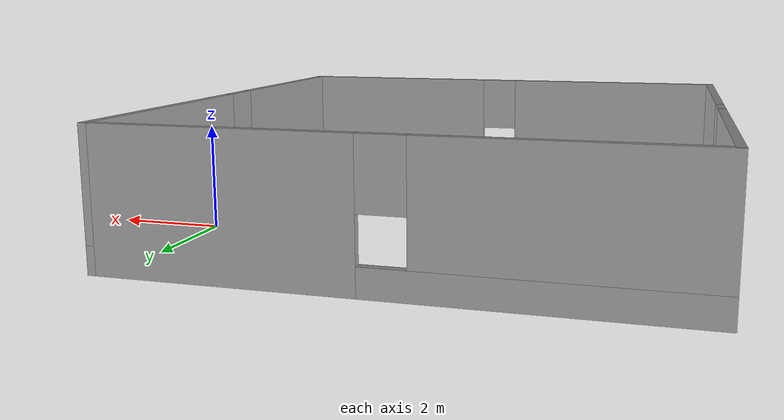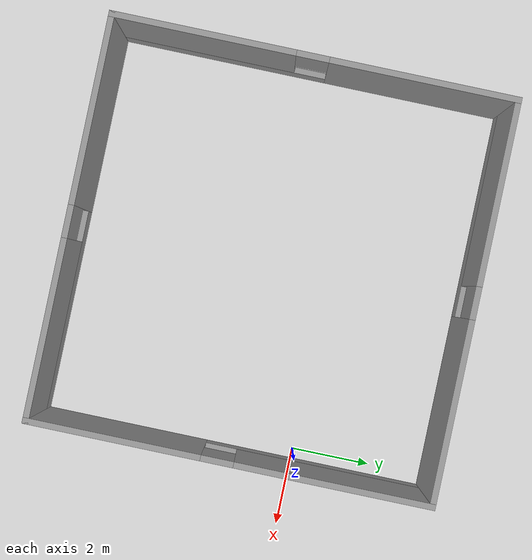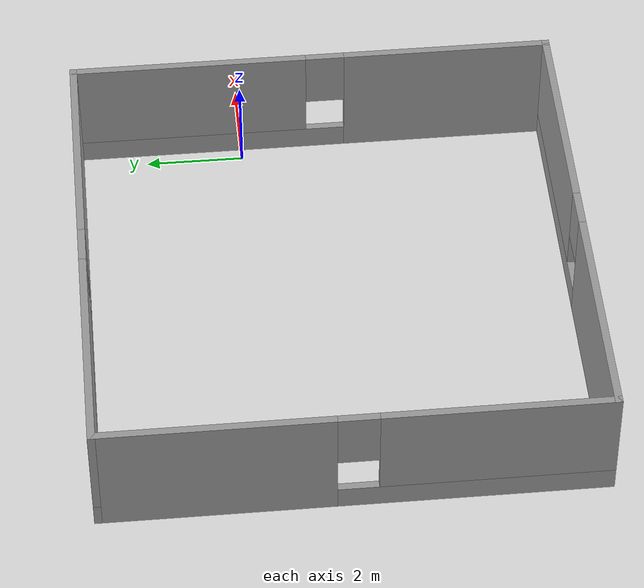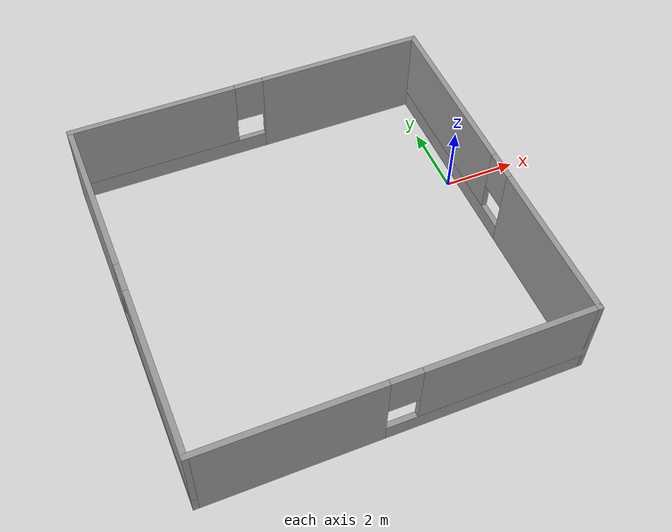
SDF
<?xml version='1.0'?>
<sdf version='1.6'>
  <model name='box'>
    <pose frame=''>-4.59481 -1.50673 0 0 -0 0</pose>
    <link name='Wall_0'>
      <pose frame=''>0 -4.925 0 0 -0 0</pose>
      <visual name='Wall_0_Visual_0'>
        <pose frame=''>-2.65077 0 1.25 0 -0 0</pose>
        <geometry>
          <box>
            <size>4.69846 0.15 2.5</size>
          </box>
        </geometry>
        <material>
          <script>
            <uri>file://media/materials/scripts/gazebo.material</uri>
            <name>Gazebo/Grey</name>
          </script>
          <ambient>1 1 1 1</ambient>
        </material>
      </visual>
      <collision name='Wall_0_Collision_0'>
        <geometry>
          <box>
            <size>4.69846 0.15 2.5</size>
          </box>
        </geometry>
        <pose frame=''>-2.65077 0 1.25 0 -0 0</pose>
      </collision>
      <visual name='Wall_0_Visual_1'>
        <pose frame=''>2.34923 0 0.25 0 -0 0</pose>
        <geometry>
          <box>
            <size>5.30154 0.15 0.5</size>
          </box>
        </geometry>
        <material>
          <script>
            <uri>file://media/materials/scripts/gazebo.material</uri>
            <name>Gazebo/Grey</name>
          </script>
          <ambient>1 1 1 1</ambient>
        </material>
      </visual>
      <collision name='Wall_0_Collision_1'>
        <geometry>
          <box>
            <size>5.30154 0.15 0.5</size>
          </box>
        </geometry>
        <pose frame=''>2.34923 0 0.25 0 -0 0</pose>
      </collision>
      <visual name='Wall_0_Visual_2'>
        <pose frame=''>2.74923 0 1.5 0 -0 0</pose>
        <geometry>
          <box>
            <size>4.50155 0.15 2</size>
          </box>
        </geometry>
        <material>
          <script>
            <uri>file://media/materials/scripts/gazebo.material</uri>
            <name>Gazebo/Grey</name>
          </script>
          <ambient>1 1 1 1</ambient>
        </material>
      </visual>
      <collision name='Wall_0_Collision_2'>
        <geometry>
          <box>
            <size>4.50155 0.15 2</size>
          </box>
        </geometry>
        <pose frame=''>2.74923 0 1.5 0 -0 0</pose>
      </collision>
      <visual name='Wall_0_Visual_3'>
        <pose frame=''>0.098455 0 1.9 0 -0 0</pose>
        <geometry>
          <box>
            <size>0.8 0.15 1.2</size>
          </box>
        </geometry>
        <material>
          <script>
            <uri>file://media/materials/scripts/gazebo.material</uri>
            <name>Gazebo/Grey</name>
          </script>
          <ambient>1 1 1 1</ambient>
        </material>
      </visual>
      <collision name='Wall_0_Collision_3'>
        <geometry>
          <box>
            <size>0.8 0.15 1.2</size>
          </box>
        </geometry>
        <pose frame=''>0.098455 0 1.9 0 -0 0</pose>
      </collision>
    </link>
    <link name='Wall_4'>
      <pose frame=''>4.925 0 0 0 -0 1.5708</pose>
      <visual name='Wall_4_Visual_0'>
        <pose frame=''>-2.84612 0 1.25 0 -0 0</pose>
        <geometry>
          <box>
            <size>4.30776 0.15 2.5</size>
          </box>
        </geometry>
        <material>
          <script>
            <uri>file://media/materials/scripts/gazebo.material</uri>
            <name>Gazebo/Grey</name>
          </script>
          <ambient>1 1 1 1</ambient>
        </material>
      </visual>
      <collision name='Wall_4_Collision_0'>
        <geometry>
          <box>
            <size>4.30776 0.15 2.5</size>
          </box>
        </geometry>
        <pose frame=''>-2.84612 0 1.25 0 -0 0</pose>
      </collision>
      <visual name='Wall_4_Visual_1'>
        <pose frame=''>2.15388 0 0.25 0 -0 0</pose>
        <geometry>
          <box>
            <size>5.69224 0.15 0.5</size>
          </box>
        </geometry>
        <material>
          <script>
            <uri>file://media/materials/scripts/gazebo.material</uri>
            <name>Gazebo/Grey</name>
          </script>
          <ambient>1 1 1 1</ambient>
        </material>
      </visual>
      <collision name='Wall_4_Collision_1'>
        <geometry>
          <box>
            <size>5.69224 0.15 0.5</size>
          </box>
        </geometry>
        <pose frame=''>2.15388 0 0.25 0 -0 0</pose>
      </collision>
      <visual name='Wall_4_Visual_2'>
        <pose frame=''>2.55388 0 1.5 0 -0 0</pose>
        <geometry>
          <box>
            <size>4.89224 0.15 2</size>
          </box>
        </geometry>
        <material>
          <script>
            <uri>file://media/materials/scripts/gazebo.material</uri>
            <name>Gazebo/Grey</name>
          </script>
          <ambient>1 1 1 1</ambient>
        </material>
      </visual>
      <collision name='Wall_4_Collision_2'>
        <geometry>
          <box>
            <size>4.89224 0.15 2</size>
          </box>
        </geometry>
        <pose frame=''>2.55388 0 1.5 0 -0 0</pose>
      </collision>
      <visual name='Wall_4_Visual_3'>
        <pose frame=''>-0.292235 0 1.9 0 -0 0</pose>
        <geometry>
          <box>
            <size>0.8 0.15 1.2</size>
          </box>
        </geometry>
        <material>
          <script>
            <uri>file://media/materials/scripts/gazebo.material</uri>
            <name>Gazebo/Grey</name>
          </script>
          <ambient>1 1 1 1</ambient>
        </material>
      </visual>
      <collision name='Wall_4_Collision_3'>
        <geometry>
          <box>
            <size>0.8 0.15 1.2</size>
          </box>
        </geometry>
        <pose frame=''>-0.292235 0 1.9 0 -0 0</pose>
      </collision>
    </link>
    <link name='Wall_5'>
      <pose frame=''>0 4.925 0 0 -0 3.14159</pose>
      <visual name='Wall_5_Visual_0'>
        <pose frame=''>-2.69603 0 1.25 0 -0 0</pose>
        <geometry>
          <box>
            <size>4.60795 0.15 2.5</size>
          </box>
        </geometry>
        <material>
          <script>
            <uri>file://media/materials/scripts/gazebo.material</uri>
            <name>Gazebo/Grey</name>
          </script>
          <ambient>1 1 1 1</ambient>
        </material>
      </visual>
      <collision name='Wall_5_Collision_0'>
        <geometry>
          <box>
            <size>4.60795 0.15 2.5</size>
          </box>
        </geometry>
        <pose frame=''>-2.69603 0 1.25 0 -0 0</pose>
      </collision>
      <visual name='Wall_5_Visual_1'>
        <pose frame=''>2.30397 0 0.25 0 -0 0</pose>
        <geometry>
          <box>
            <size>5.39205 0.15 0.5</size>
          </box>
        </geometry>
        <material>
          <script>
            <uri>file://media/materials/scripts/gazebo.material</uri>
            <name>Gazebo/Grey</name>
          </script>
          <ambient>1 1 1 1</ambient>
        </material>
      </visual>
      <collision name='Wall_5_Collision_1'>
        <geometry>
          <box>
            <size>5.39205 0.15 0.5</size>
          </box>
        </geometry>
        <pose frame=''>2.30397 0 0.25 0 -0 0</pose>
      </collision>
      <visual name='Wall_5_Visual_2'>
        <pose frame=''>2.70397 0 1.5 0 -0 0</pose>
        <geometry>
          <box>
            <size>4.59205 0.15 2</size>
          </box>
        </geometry>
        <material>
          <script>
            <uri>file://media/materials/scripts/gazebo.material</uri>
            <name>Gazebo/Grey</name>
          </script>
          <ambient>1 1 1 1</ambient>
        </material>
      </visual>
      <collision name='Wall_5_Collision_2'>
        <geometry>
          <box>
            <size>4.59205 0.15 2</size>
          </box>
        </geometry>
        <pose frame=''>2.70397 0 1.5 0 -0 0</pose>
      </collision>
      <visual name='Wall_5_Visual_3'>
        <pose frame=''>0.007946 0 1.9 0 -0 0</pose>
        <geometry>
          <box>
            <size>0.8 0.15 1.2</size>
          </box>
        </geometry>
        <material>
          <script>
            <uri>file://media/materials/scripts/gazebo.material</uri>
            <name>Gazebo/Grey</name>
          </script>
          <ambient>1 1 1 1</ambient>
        </material>
      </visual>
      <collision name='Wall_5_Collision_3'>
        <geometry>
          <box>
            <size>0.8 0.15 1.2</size>
          </box>
        </geometry>
        <pose frame=''>0.007946 0 1.9 0 -0 0</pose>
      </collision>
    </link>
    <link name='Wall_6'>
      <pose frame=''>-4.925 0 0 0 0 -1.5708</pose>
      <visual name='Wall_6_Visual_0'>
        <pose frame=''>-2.67358 0 1.25 0 -0 0</pose>
        <geometry>
          <box>
            <size>4.65283 0.15 2.5</size>
          </box>
        </geometry>
        <material>
          <script>
            <uri>file://media/materials/scripts/gazebo.material</uri>
            <name>Gazebo/Grey</name>
          </script>
          <ambient>1 1 1 1</ambient>
        </material>
      </visual>
      <collision name='Wall_6_Collision_0'>
        <geometry>
          <box>
            <size>4.65283 0.15 2.5</size>
          </box>
        </geometry>
        <pose frame=''>-2.67358 0 1.25 0 -0 0</pose>
      </collision>
      <visual name='Wall_6_Visual_1'>
        <pose frame=''>2.32642 0 0.25 0 -0 0</pose>
        <geometry>
          <box>
            <size>5.34717 0.15 0.5</size>
          </box>
        </geometry>
        <material>
          <script>
            <uri>file://media/materials/scripts/gazebo.material</uri>
            <name>Gazebo/Grey</name>
          </script>
          <ambient>1 1 1 1</ambient>
        </material>
      </visual>
      <collision name='Wall_6_Collision_1'>
        <geometry>
          <box>
            <size>5.34717 0.15 0.5</size>
          </box>
        </geometry>
        <pose frame=''>2.32642 0 0.25 0 -0 0</pose>
      </collision>
      <visual name='Wall_6_Visual_2'>
        <pose frame=''>2.72642 0 1.5 0 -0 0</pose>
        <geometry>
          <box>
            <size>4.54717 0.15 2</size>
          </box>
        </geometry>
        <material>
          <script>
            <uri>file://media/materials/scripts/gazebo.material</uri>
            <name>Gazebo/Grey</name>
          </script>
          <ambient>1 1 1 1</ambient>
        </material>
      </visual>
      <collision name='Wall_6_Collision_2'>
        <geometry>
          <box>
            <size>4.54717 0.15 2</size>
          </box>
        </geometry>
        <pose frame=''>2.72642 0 1.5 0 -0 0</pose>
      </collision>
      <visual name='Wall_6_Visual_3'>
        <pose frame=''>0.052833 0 1.9 0 -0 0</pose>
        <geometry>
          <box>
            <size>0.8 0.15 1.2</size>
          </box>
        </geometry>
        <material>
          <script>
            <uri>file://media/materials/scripts/gazebo.material</uri>
            <name>Gazebo/Grey</name>
          </script>
          <ambient>1 1 1 1</ambient>
        </material>
      </visual>
      <collision name='Wall_6_Collision_3'>
        <geometry>
          <box>
            <size>0.8 0.15 1.2</size>
          </box>
        </geometry>
        <pose frame=''>0.052833 0 1.9 0 -0 0</pose>
      </collision>
    </link>
    <static>1</static>
  </model>
</sdf>
